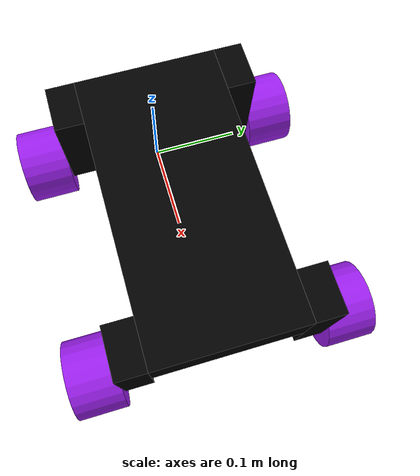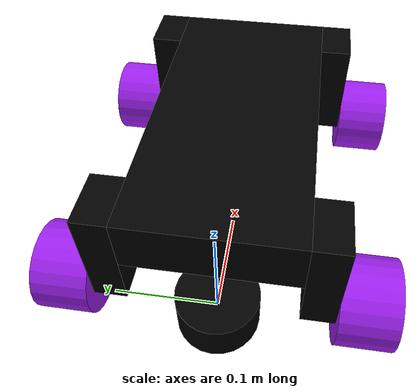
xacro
<?xml version="1.0"?>
<robot xmlns:xacro="http://ros.org/wiki/xacro" name="microver">

    <xacro:include filename="constants.xacro" />
    <xacro:include filename="inertial_macros.xacro" />

    <xacro:include filename="lidar.xacro" />

    <material name="black">
        <color rgba="0 0 0 1" />
    </material>
    <material name="white">
        <color rgba="1 1 1 1" />
    </material>
    <material name="blue">
        <color rgba="0.2 0.2 1 1" />
    </material>

    <material name="purple">
        <color rgba="0.62 0.12 0.94 1" />
    </material>

    <!-- the base link located in the middle of the line between the center of both back wheels -->
    <link name="base_link">
        <visual>
            <geometry>
                <cylinder length="0.003" radius="0.003"/>
            </geometry>
            <origin xyz="0 0 0" rpy="0 0 0"/>
            <material name="white" />
        </visual>
    </link>

                    <!-- ####################### JOINTS ########################## -->

    <joint name="chassis_joint" type="fixed">
        <origin xyz="0 0 0" rpy="0 0 0" />
        <parent link="base_link" />
        <child link="chassis" />
    </joint>

                                        <!-- WHEEL JOINTS -->

    <joint name="front_left_wheel_joint" type="continuous">
        <origin xyz="${LENGTH - LEG_LENGTH} ${((WIDTH/2) + LEG_WIDTH + (WHEEL_WIDTH/2))} ${WHEEL_RADIUS}" rpy="-${pi/2} 0 0" />
        <parent link="base_link" />
        <child link="front_left_wheel_link" />
        <axis xyz="0 0 1"/>
        <limit effort="100" velocity="100"/>
        <dynamics damping="0.1" friction="0.1"/>
    </joint>

    <joint name="front_right_wheel_joint" type="continuous">
        <origin xyz="${LENGTH - LEG_LENGTH} ${-((WIDTH/2) + LEG_WIDTH + (WHEEL_WIDTH/2))} ${WHEEL_RADIUS}" rpy="${pi/2} 0 0" />
        <parent link="base_link" />
        <child link="front_right_wheel_link" />
        <axis xyz="0 0 -1"/>
        <limit effort="100" velocity="100"/>
        <dynamics damping="0.1" friction="0.1"/>
    </joint>

    <joint name="back_left_wheel_joint" type="continuous">
        <origin xyz="0 ${((WIDTH/2) + LEG_WIDTH + (WHEEL_WIDTH/2))} ${WHEEL_RADIUS}" rpy="-${pi/2} 0 0" />
        <parent link="base_link" />
        <child link="back_left_wheel_link" />
        <axis xyz="0 0 1"/>
        <limit effort="100" velocity="100"/>
        <dynamics damping="0.1" friction="0.1"/>
    </joint>

    <joint name="back_right_wheel_joint" type="continuous">
        <origin xyz="0 ${-((WIDTH/2) + LEG_WIDTH + (WHEEL_WIDTH/2))} ${WHEEL_RADIUS}" rpy="${pi/2} 0 0" />
        <parent link="base_link" />
        <child link="back_right_wheel_link" />
        <axis xyz="0 0 -1"/>
        <limit effort="100" velocity="100"/>
        <dynamics damping="0.1" friction="0.1"/>
    </joint>

                                <!-- LEG JOINTS = FIXED -->

    <joint name="back_left_leg_joint" type="fixed">
        <origin xyz="0 ${((WIDTH/2)+(LEG_WIDTH/2))} ${LEG_HEIGHT/2 + WHEEL_RADIUS}" rpy="0 0 0" />
        <parent link="base_link" />
        <child link="back_left_leg_link" />
    </joint>

    <joint name="back_right_leg_joint" type="fixed">
        <origin xyz="0 ${-((WIDTH/2)+(LEG_WIDTH/2))} ${LEG_HEIGHT/2 + WHEEL_RADIUS}" rpy="0 0 0" />
        <parent link="base_link" />
        <child link="back_right_leg_link" />
    </joint>

    <joint name="front_left_leg_joint" type="fixed">
        <origin xyz="${LENGTH - LEG_LENGTH} ${((WIDTH/2)+(LEG_WIDTH/2))} ${LEG_HEIGHT/2 + WHEEL_RADIUS}" rpy="0 0 0" />
        <parent link="base_link" />
        <child link="front_left_leg_link" />
    </joint>

    <joint name="front_right_leg_joint" type="fixed">
        <origin xyz="${LENGTH - LEG_LENGTH} ${-((WIDTH/2)+(LEG_WIDTH/2))} ${LEG_HEIGHT/2 + WHEEL_RADIUS}"
            rpy="0 0 0" />
        <parent link="base_link" />
        <child link="front_right_leg_link" />
    </joint>

                    <!-- ####################### LINKS ########################## -->

    <link name="chassis">
        <visual>
            <geometry>
                <box size="${LENGTH} ${WIDTH} ${HEIGHT}" />
            </geometry>
            <origin xyz="${LENGTH/2 - LEG_LENGTH/2} 0 ${LEG_HEIGHT - HEIGHT/2 + WHEEL_RADIUS}" rpy="0 0 0"/>
            <material name="black" />
        </visual>
        <collision>
            <geometry>
                <box size="${LENGTH} ${WIDTH} ${HEIGHT}" />
            </geometry>
            <origin xyz="${LENGTH/2 - LEG_LENGTH/2} 0 ${LEG_HEIGHT - HEIGHT/2 + WHEEL_RADIUS}" rpy="0 0 0"/>
        </collision>
        <xacro:inertial_box mass="${MASS}" x="${LENGTH}" y="${WIDTH}" z="${HEIGHT}">
            <origin xyz="${LENGTH/2 - LEG_LENGTH/2} 0 ${LEG_HEIGHT - HEIGHT/2 + WHEEL_RADIUS}" rpy="0 0 0"/>
        </xacro:inertial_box>
    </link>

                                        <!-- LEG LINKS -->

    <!-- need to add inertias for the legs -->
    <link name="back_left_leg_link">
        <visual>
            <geometry>
                <box size="${LEG_LENGTH} ${LEG_WIDTH} ${LEG_HEIGHT}" />
            </geometry>
            <material name="black" />
        </visual>
        <collision>
            <geometry>
                <box size="${LEG_LENGTH} ${LEG_WIDTH} ${LEG_HEIGHT}" />
            </geometry>
        </collision>
        <xacro:inertial_box mass="${LEG_MASS}" x="${LEG_LENGTH}" y="${LEG_WIDTH}" z="${LEG_HEIGHT}">
            <origin xyz="0 0 0" />
        </xacro:inertial_box>
    </link>

    <link name="back_right_leg_link">
        <visual>
            <geometry>
                <box size="${LEG_LENGTH} ${LEG_WIDTH} ${LEG_HEIGHT}" />
            </geometry>
            <material name="black" />
        </visual>
        <collision>
            <geometry>
                <box size="${LEG_LENGTH} ${LEG_WIDTH} ${LEG_HEIGHT}" />
            </geometry>
        </collision>
        <xacro:inertial_box mass="${LEG_MASS}" x="${LEG_LENGTH}" y="${LEG_WIDTH}" z="${LEG_HEIGHT}">
            <origin xyz="0 0 0" />
        </xacro:inertial_box>
    </link>

    <link name="front_left_leg_link">
        <visual>
            <geometry>
                <box size="${LEG_LENGTH} ${LEG_WIDTH} ${LEG_HEIGHT}" />
            </geometry>
            <material name="black" />
        </visual>
        <collision>
            <geometry>
                <box size="${LEG_LENGTH} ${LEG_WIDTH} ${LEG_HEIGHT}" />
            </geometry>
        </collision>
        <xacro:inertial_box mass="${LEG_MASS}" x="${LEG_LENGTH}" y="${LEG_WIDTH}" z="${LEG_HEIGHT}">
            <origin xyz="0 0 0" />
        </xacro:inertial_box>

    </link>

    <link name="front_right_leg_link">
        <visual>
            <geometry>
                <box size="${LEG_LENGTH} ${LEG_WIDTH} ${LEG_HEIGHT}" />
            </geometry>
            <material name="black" />
        </visual>
        <collision>
            <geometry>
                <box size="${LEG_LENGTH} ${LEG_WIDTH} ${LEG_HEIGHT}" />
            </geometry>
        </collision>
        <xacro:inertial_box mass="${LEG_MASS}" x="${LEG_LENGTH}" y="${LEG_WIDTH}" z="${LEG_HEIGHT}">
            <origin xyz="0 0 0" />
        </xacro:inertial_box>
    </link>

                                        <!-- WHEEL LINKS -->

    <link name="front_left_wheel_link">
        <visual>
            <geometry>
                <cylinder radius="${WHEEL_RADIUS}" length="${WHEEL_WIDTH}" />
            </geometry>
            <material name="purple" />
        </visual>
        <collision>
            <geometry>
                <cylinder radius="${WHEEL_RADIUS}" length="${WHEEL_WIDTH}" />
            </geometry>
        </collision>
        <xacro:inertial_cylinder mass="${WHEEL_MASS}" length="${WHEEL_WIDTH}" radius="${WHEEL_RADIUS}">
            <origin xyz="0 0 0"/>
        </xacro:inertial_cylinder>
    </link>

    <link name="front_right_wheel_link">
        <visual>
            <geometry>
                <cylinder radius="${WHEEL_RADIUS}" length="${WHEEL_WIDTH}" />
            </geometry>
            <material name="purple" />
        </visual>
        <collision>
            <geometry>
                <cylinder radius="${WHEEL_RADIUS}" length="${WHEEL_WIDTH}" />
            </geometry>
        </collision>
        <xacro:inertial_cylinder mass="${WHEEL_MASS}" length="${WHEEL_WIDTH}" radius="${WHEEL_RADIUS}">
            <origin xyz="0 0 0"/>
        </xacro:inertial_cylinder>
    </link>

    <link name="back_left_wheel_link">
        <visual>
            <geometry>
                <cylinder radius="${WHEEL_RADIUS}" length="${WHEEL_WIDTH}" />
            </geometry>
            <material name="purple" />
        </visual>
        <collision>
            <geometry>
                <cylinder radius="${WHEEL_RADIUS}" length="${WHEEL_WIDTH}" />
            </geometry>
        </collision>
        <xacro:inertial_cylinder mass="${WHEEL_MASS}" length="${WHEEL_WIDTH}" radius="${WHEEL_RADIUS}">
            <origin xyz="0 0 0"/>
        </xacro:inertial_cylinder>
    </link>

    <link name="back_right_wheel_link">
        <visual>
            <geometry>
                <cylinder radius="${WHEEL_RADIUS}" length="${WHEEL_WIDTH}" />
            </geometry>
            <material name="purple" />
        </visual>
        <collision>
            <geometry>
                <cylinder radius="${WHEEL_RADIUS}" length="${WHEEL_WIDTH}" />
            </geometry>
        </collision>
        <xacro:inertial_cylinder mass="${WHEEL_MASS}" length="${WHEEL_WIDTH}" radius="${WHEEL_RADIUS}">
            <origin xyz="0 0 0"/>
        </xacro:inertial_cylinder>
    </link>

</robot>

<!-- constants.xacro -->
<robot xmlns:xacro="http://ros.org/wiki/xacro">

    <!-- speeds are in m/2 or rad/s, dimensions in m, weights in kg -->

    <xacro:property name="MAX_SPEED"    value="5.5"  />
    <xacro:property name="MIN_SPEED"    value="0.0"  />

    <xacro:property name="WHEEL_RADIUS" value="0.04" />
    <xacro:property name="WHEEL_WIDTH"  value="0.05"  />
    <xacro:property name="WHEELBASE"    value="0.5"  />
    <xacro:property name="WHEEL_MASS"   value="0.45"  />

    <xacro:property name="HEIGHT"       value="0.05" />
    <xacro:property name="LENGTH"       value="0.3"  />
    <xacro:property name="WIDTH"        value="0.15" />
    <xacro:property name="MASS"         value="3"    />

    <xacro:property name="LEG_WIDTH"    value="0.03" />
    <xacro:property name="LEG_HEIGHT"   value="0.1"  />
    <xacro:property name="LEG_LENGTH"   value="0.05" />
    <xacro:property name="LEG_MASS"     value="0.1"  />

    <xacro:property name="MU1"          value="0.3"  />
    <xacro:property name="MU2"          value="0.3"  />

    <xacro:property name="LIDAR_RADIUS" value="0.04"  />
    <xacro:property name="LIDAR_WIDTH" value="0.04"  />
    <xacro:property name="LIDAR_MASS" value="0.2"  />

</robot>

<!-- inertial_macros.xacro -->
<robot xmlns:xacro="http://www.ros.org/wiki/xacro" >
    <!-- ALL CREDITS GO TO JOSH NEWANS OF ARTICULATED ROBOTICS -->
    <!-- Specify some standard inertial calculations https://en.wikipedia.org/wiki/List_of_moments_of_inertia -->
    <!-- These make use of xacro's mathematical functionality -->

    <xacro:macro name="inertial_sphere" params="mass radius *origin">
        <inertial>
            <xacro:insert_block name="origin"/>
            <mass value="${mass}" />
            <inertia ixx="${(2/5) * mass * (radius*radius)}" ixy="0.0" ixz="0.0"
                    iyy="${(2/5) * mass * (radius*radius)}" iyz="0.0"
                    izz="${(2/5) * mass * (radius*radius)}" />
        </inertial>
    </xacro:macro>

    <xacro:macro name="inertial_box" params="mass x y z *origin">
        <inertial>
            <xacro:insert_block name="origin"/>
            <mass value="${mass}" />
            <inertia ixx="${(1/12) * mass * (y*y+z*z)}" ixy="0.0" ixz="0.0"
                    iyy="${(1/12) * mass * (x*x+z*z)}" iyz="0.0"
                    izz="${(1/12) * mass * (x*x+y*y)}" />
        </inertial>
    </xacro:macro>

    <xacro:macro name="inertial_cylinder" params="mass length radius *origin">
        <inertial>
            <xacro:insert_block name="origin"/>
            <mass value="${mass}" />
            <inertia ixx="${(1/12) * mass * (3*radius*radius + length*length)}" ixy="0.0" ixz="0.0"
                    iyy="${(1/12) * mass * (3*radius*radius + length*length)}" iyz="0.0"
                    izz="${(1/2) * mass * (radius*radius)}" />
        </inertial>
    </xacro:macro>

</robot>

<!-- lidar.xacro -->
<robot xmlns:xacro="http://ros.org/wiki/xacro" name="microver">

    <joint name="lidar_joint" type="fixed">
        <parent link="chassis"/>
        <child link="lidar_frame"/>
        <origin xyz="0 0 0" rpy="0 0 0"/> #TODO: FIX THESE COORDINATES TO REPRESENT REAL WORLD !
    </joint>

    <link name="lidar_frame">

        <visual>
            <geometry>
                <cylinder radius="${LIDAR_RADIUS}" length="${LIDAR_WIDTH}" />
            </geometry>
            <material name="black" />
        </visual>
        <collision>
            <geometry>
                <cylinder radius="${LIDAR_RADIUS}" length="${LIDAR_WIDTH}" />
            </geometry>
        </collision>
        <xacro:inertial_cylinder mass="${LIDAR_MASS}" length="${LIDAR_WIDTH}" radius="${LIDAR_RADIUS}">
            <origin xyz="0 0 0"/>
        </xacro:inertial_cylinder>
    </link>

</robot>
